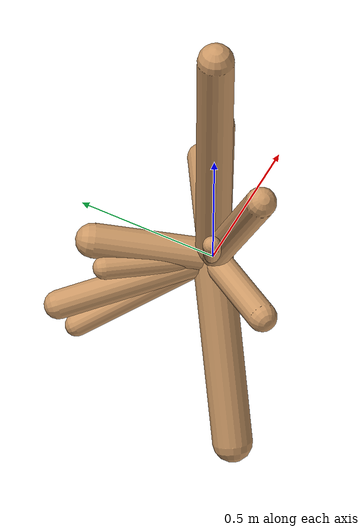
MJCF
<!--
                    joint_number: 10
                    -->
                    <mujoco model="randomrobot">
                        <compiler angle="degree" coordinate="global" inertiafromgeom="true"/>
                        <default>
                        <joint armature="0.01" damping=".1" limited="true"/>
                        <geom conaffinity="0" condim="3" contype="1" density="1000" friction="0.8 .1 .1" rgba="0.8 0.6 .4 1"/>
                        </default>
                        <option integrator="RK4" timestep="0.002"/>
                        <worldbody>
                    <body name='torso' pos='0.00 0.00 0.92'><geom fromto='0 0 0 0.00 0.00 1.00' name='torso_geom' size='0.06' type='capsule'/><inertial mass='0.3'/><body name='L0_D1' pos='0.00 0.00 0.55'><joint axis='1 0 0' name='L0_D1_joint' pos='0 0 0' range='97.76 98.69' type='hinge'/><geom fromto='0 0 0 -0.19 -0.28 0.06' name='L0_D1_geom' size='0.05' type='capsule'/><inertial mass='0.3'/><body name='L1_D0' pos='-0.04 -0.05 0.01'><joint axis='0 1 0' name='L1_D0_joint' pos='0 0 0' range='3.92 156.35' type='hinge'/><geom fromto='0 0 0 0.28 0.13 0.32' name='L1_D0_geom' size='0.06' type='capsule'/><inertial mass='0.3'/></body><body name='L2_D0' pos='-0.12 -0.17 0.04'><joint axis='1 0 0' name='L2_D0_joint' pos='0 0 0' range='123.71 177.56' type='hinge'/><geom fromto='0 0 0 -0.25 -0.12 0.42' name='L2_D0_geom' size='0.03' type='capsule'/><inertial mass='0.3'/></body></body><body name='L3_D1' pos='0.00 0.00 0.10'><joint axis='1 0 0' name='L3_D1_joint' pos='0 0 0' range='52.90 110.20' type='hinge'/><geom fromto='0 0 0 -0.31 0.36 -0.24' name='L3_D1_geom' size='0.04' type='capsule'/><inertial mass='0.3'/><body name='L4_D0' pos='-0.19 0.22 -0.15'><joint axis='0 1 0' name='L4_D0_joint' pos='0 0 0' range='11.26 172.48' type='hinge'/><geom fromto='0 0 0 -0.18 0.36 0.08' name='L4_D0_geom' size='0.06' type='capsule'/><inertial mass='0.3'/></body><body name='L5_D0' pos='-0.10 0.11 -0.08'><joint axis='1 0 0' name='L5_D0_joint' pos='0 0 0' range='101.18 148.96' type='hinge'/><geom fromto='0 0 0 -0.34 0.41 -0.12' name='L5_D0_geom' size='0.05' type='capsule'/><inertial mass='0.3'/></body><body name='L6_D0' pos='-0.27 0.32 -0.21'><joint axis='0 0 1' name='L6_D0_joint' pos='0 0 0' range='53.84 167.30' type='hinge'/><geom fromto='0 0 0 0.52 0.31 -0.21' name='L6_D0_geom' size='0.05' type='capsule'/><inertial mass='0.3'/></body></body><body name='L7_D1' pos='0.00 0.00 0.72'><joint axis='0 1 0' name='L7_D1_joint' pos='0 0 0' range='10.48 126.23' type='hinge'/><geom fromto='0 0 0 -0.25 -0.29 0.74' name='L7_D1_geom' size='0.05' type='capsule'/><inertial mass='0.3'/><body name='L8_D0' pos='-0.17 -0.20 0.50'><joint axis='0 0 1' name='L8_D0_joint' pos='0 0 0' range='37.81 100.39' type='hinge'/><geom fromto='0 0 0 -0.23 0.29 0.03' name='L8_D0_geom' size='0.04' type='capsule'/><inertial mass='0.3'/></body></body><body name='L9_D1' pos='0.00 0.00 0.25'><joint axis='0 1 0' name='L9_D1_joint' pos='0 0 0' range='29.42 156.08' type='hinge'/><geom fromto='0 0 0 -0.31 -0.24 -0.54' name='L9_D1_geom' size='0.07' type='capsule'/><inertial mass='0.3'/></body></body>
                        </worldbody>
                    </mujoco>
